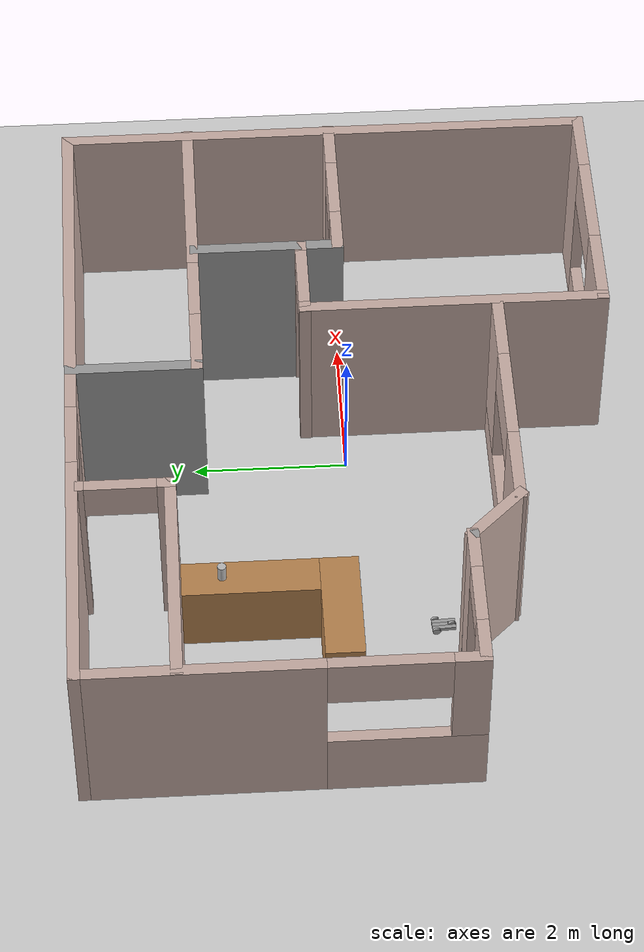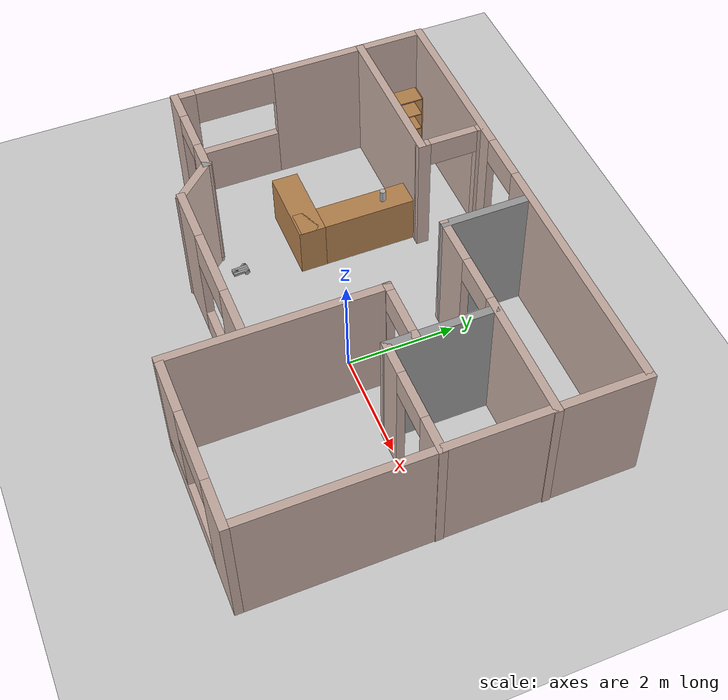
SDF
<sdf version="1.6">
 <world name="default">
  <model name="ground_plane">
   <static>1</static>
   <link name="link">
    <collision name="collision">
     <geometry><plane><normal>0 0 1</normal><size>100 100</size></plane></geometry>
     <surface><friction><ode><mu>100</mu><mu2>50</mu2></ode></friction></surface>
    </collision>
    <visual name="visual">
     <cast_shadows>0</cast_shadows>
     <geometry><plane><normal>0 0 1</normal><size>100 100</size></plane></geometry>
     <material>
      <script><uri>file://media/materials/scripts/gazebo.material</uri><name>Gazebo/Grey</name></script>
     </material>
    </visual>
   </link>
  </model>
  <model name="Building">
   <pose>-0.641845 0.088842 0 0 -0 0</pose>
   <link name="Wall_0">
    <pose>-0.008719 3.42505 0 0 -0 0</pose>
    <visual name="Wall_0_Visual_0">
     <pose>-2.83723 0 1.25 0 -0 0</pose>
     <geometry><box><size>3.32554 0.15 2.5</size></box></geometry>
     <material>
      <script><uri>file://media/materials/scripts/gazebo.material</uri><name>Gazebo/Grey</name></script>
      <ambient>0.760784 0.662745 0.627451 1</ambient>
     </material>
     <meta><layer>0</layer></meta>
    </visual>
    <collision name="Wall_0_Collision_0">
     <geometry><box><size>3.32554 0.15 2.5</size></box></geometry>
     <pose>-2.83723 0 1.25 0 -0 0</pose>
    </collision>
    <visual name="Wall_0_Visual_1">
     <pose>2.11277 0 1.25 0 -0 0</pose>
     <geometry><box><size>4.77445 0.15 2.5</size></box></geometry>
     <material>
      <script><uri>file://media/materials/scripts/gazebo.material</uri><name>Gazebo/Grey</name></script>
      <ambient>0.760784 0.662745 0.627451 1</ambient>
     </material>
     <meta><layer>0</layer></meta>
    </visual>
    <collision name="Wall_0_Collision_1">
     <geometry><box><size>4.77445 0.15 2.5</size></box></geometry>
     <pose>2.11277 0 1.25 0 -0 0</pose>
    </collision>
    <visual name="Wall_0_Visual_2">
     <pose>-0.724455 0 2.25 0 -0 0</pose>
     <geometry><box><size>0.9 0.15 0.5</size></box></geometry>
     <material>
      <script><uri>file://media/materials/scripts/gazebo.material</uri><name>Gazebo/Grey</name></script>
      <ambient>0.760784 0.662745 0.627451 1</ambient>
     </material>
     <meta><layer>0</layer></meta>
    </visual>
    <collision name="Wall_0_Collision_2">
     <geometry><box><size>0.9 0.15 0.5</size></box></geometry>
     <pose>-0.724455 0 2.25 0 -0 0</pose>
    </collision>
   </link>
   <link name="Wall_17">
    <collision name="Wall_17_Collision">
     <geometry><box><size>7 0.15 2.5</size></box></geometry>
     <pose>0 0 1.25 0 -0 0</pose>
    </collision>
    <visual name="Wall_17_Visual">
     <pose>0 0 1.25 0 -0 0</pose>
     <geometry><box><size>7 0.15 2.5</size></box></geometry>
     <material>
      <script><uri>file://media/materials/scripts/gazebo.material</uri><name>Gazebo/Grey</name></script>
      <ambient>0.760784 0.662745 0.627451 1</ambient>
     </material>
     <meta><layer>0</layer></meta>
    </visual>
    <pose>4.41628 5.1e-05 0 0 0 -1.5708</pose>
   </link>
   <link name="Wall_19">
    <pose>2.83077 -3.42495 0 0 -0 3.14159</pose>
    <visual name="Wall_19_Visual_0">
     <pose>-1.20755 0 1.25 0 -0 0</pose>
     <geometry><box><size>0.905905 0.15 2.5</size></box></geometry>
     <material>
      <script><uri>file://media/materials/scripts/gazebo.material</uri><name>Gazebo/Grey</name></script>
      <ambient>0.760784 0.662745 0.627451 1</ambient>
     </material>
     <meta><layer>0</layer></meta>
    </visual>
    <collision name="Wall_19_Collision_0">
     <geometry><box><size>0.905905 0.15 2.5</size></box></geometry>
     <pose>-1.20755 0 1.25 0 -0 0</pose>
    </collision>
    <visual name="Wall_19_Visual_1">
     <pose>0.452953 0 0.25 0 -0 0</pose>
     <geometry><box><size>2.41511 0.15 0.5</size></box></geometry>
     <material>
      <script><uri>file://media/materials/scripts/gazebo.material</uri><name>Gazebo/Grey</name></script>
      <ambient>0.760784 0.662745 0.627451 1</ambient>
     </material>
     <meta><layer>0</layer></meta>
    </visual>
    <collision name="Wall_19_Collision_1">
     <geometry><box><size>2.41511 0.15 0.5</size></box></geometry>
     <pose>0.452953 0 0.25 0 -0 0</pose>
    </collision>
    <visual name="Wall_19_Visual_2">
     <pose>1.10295 0 1.5 0 -0 0</pose>
     <geometry><box><size>1.11511 0.15 2</size></box></geometry>
     <material>
      <script><uri>file://media/materials/scripts/gazebo.material</uri><name>Gazebo/Grey</name></script>
      <ambient>0.760784 0.662745 0.627451 1</ambient>
     </material>
     <meta><layer>0</layer></meta>
    </visual>
    <collision name="Wall_19_Collision_2">
     <geometry><box><size>1.11511 0.15 2</size></box></geometry>
     <pose>1.10295 0 1.5 0 -0 0</pose>
    </collision>
    <visual name="Wall_19_Visual_3">
     <pose>-0.104603 0 2.15 0 -0 0</pose>
     <geometry><box><size>1.3 0.15 0.7</size></box></geometry>
     <material>
      <script><uri>file://media/materials/scripts/gazebo.material</uri><name>Gazebo/Grey</name></script>
      <ambient>0.760784 0.662745 0.627451 1</ambient>
     </material>
     <meta><layer>0</layer></meta>
    </visual>
    <collision name="Wall_19_Collision_3">
     <geometry><box><size>1.3 0.15 0.7</size></box></geometry>
     <pose>-0.104603 0 2.15 0 -0 0</pose>
    </collision>
   </link>
   <link name="Wall_23">
    <pose>-3.50872 -1.42495 0 0 -0 0</pose>
    <visual name="Wall_23_Visual_0">
     <pose>-0.693942 0 1.25 0 -0 0</pose>
     <geometry><box><size>0.612115 0.15 2.5</size></box></geometry>
     <material>
      <script><uri>file://media/materials/scripts/gazebo.material</uri><name>Gazebo/Grey</name></script>
      <ambient>0.760784 0.662745 0.627451 1</ambient>
     </material>
     <meta><layer>0</layer></meta>
    </visual>
    <collision name="Wall_23_Collision_0">
     <geometry><box><size>0.612115 0.15 2.5</size></box></geometry>
     <pose>-0.693942 0 1.25 0 -0 0</pose>
    </collision>
    <visual name="Wall_23_Visual_1">
     <pose>0.306058 0 0.05 0 -0 0</pose>
     <geometry><box><size>1.38789 0.15 0.1</size></box></geometry>
     <material>
      <script><uri>file://media/materials/scripts/gazebo.material</uri><name>Gazebo/Grey</name></script>
      <ambient>0.760784 0.662745 0.627451 1</ambient>
     </material>
     <meta><layer>0</layer></meta>
    </visual>
    <collision name="Wall_23_Collision_1">
     <geometry><box><size>1.38789 0.15 0.1</size></box></geometry>
     <pose>0.306058 0 0.05 0 -0 0</pose>
    </collision>
    <visual name="Wall_23_Visual_2">
     <pose>0.706058 0 1.3 0 -0 0</pose>
     <geometry><box><size>0.587885 0.15 2.4</size></box></geometry>
     <material>
      <script><uri>file://media/materials/scripts/gazebo.material</uri><name>Gazebo/Grey</name></script>
      <ambient>0.760784 0.662745 0.627451 1</ambient>
     </material>
     <meta><layer>0</layer></meta>
    </visual>
    <collision name="Wall_23_Collision_2">
     <geometry><box><size>0.587885 0.15 2.4</size></box></geometry>
     <pose>0.706058 0 1.3 0 -0 0</pose>
    </collision>
    <visual name="Wall_23_Visual_3">
     <pose>0.012115 0 2.3 0 -0 0</pose>
     <geometry><box><size>0.8 0.15 0.4</size></box></geometry>
     <material>
      <script><uri>file://media/materials/scripts/gazebo.material</uri><name>Gazebo/Grey</name></script>
      <ambient>0.760784 0.662745 0.627451 1</ambient>
     </material>
     <meta><layer>0</layer></meta>
    </visual>
    <collision name="Wall_23_Collision_3">
     <geometry><box><size>0.8 0.15 0.4</size></box></geometry>
     <pose>0.012115 0 2.3 0 -0 0</pose>
    </collision>
   </link>
   <link name="Wall_24">
    <collision name="Wall_24_Collision">
     <geometry><box><size>1.02135 0.15 2.5</size></box></geometry>
     <pose>0 0 1.25 0 -0 0</pose>
    </collision>
    <visual name="Wall_24_Visual">
     <pose>0 0 1.25 0 -0 0</pose>
     <geometry><box><size>1.02135 0.15 2.5</size></box></geometry>
     <material>
      <script><uri>file://media/materials/scripts/gazebo.material</uri><name>Gazebo/Grey</name></script>
      <ambient>0.760784 0.662745 0.627451 1</ambient>
     </material>
     <meta><layer>0</layer></meta>
    </visual>
    <pose>-2.2832 -1.74038 0 0 0 -0.809608</pose>
   </link>
   <link name="Wall_27">
    <collision name="Wall_27_Collision">
     <geometry><box><size>1.75 0.15 2.5</size></box></geometry>
     <pose>0 0 1.25 0 -0 0</pose>
    </collision>
    <visual name="Wall_27_Visual">
     <pose>0 0 1.25 0 -0 0</pose>
     <geometry><box><size>1.75 0.15 2.5</size></box></geometry>
     <material>
      <script><uri>file://media/materials/scripts/gazebo.material</uri><name>Gazebo/Grey</name></script>
      <ambient>1 1 1 1</ambient>
     </material>
     <meta><layer>0</layer></meta>
    </visual>
    <pose>0.33372 2.62505 0 0 0 -1.5708</pose>
   </link>
   <link name="Wall_28">
    <pose>2.38372 1.82505 0 0 -0 0</pose>
    <visual name="Wall_28_Visual_0">
     <pose>-1.65584 0 1.25 0 -0 0</pose>
     <geometry><box><size>0.93832 0.15 2.5</size></box></geometry>
     <material>
      <script><uri>file://media/materials/scripts/gazebo.material</uri><name>Gazebo/Grey</name></script>
      <ambient>0.760784 0.662745 0.627451 1</ambient>
     </material>
     <meta><layer>0</layer></meta>
    </visual>
    <collision name="Wall_28_Collision_0">
     <geometry><box><size>0.93832 0.15 2.5</size></box></geometry>
     <pose>-1.65584 0 1.25 0 -0 0</pose>
    </collision>
    <visual name="Wall_28_Visual_1">
     <pose>0.91916 0 1.25 0 -0 0</pose>
     <geometry><box><size>2.41168 0.15 2.5</size></box></geometry>
     <material>
      <script><uri>file://media/materials/scripts/gazebo.material</uri><name>Gazebo/Grey</name></script>
      <ambient>0.760784 0.662745 0.627451 1</ambient>
     </material>
     <meta><layer>0</layer></meta>
    </visual>
    <collision name="Wall_28_Collision_1">
     <geometry><box><size>2.41168 0.15 2.5</size></box></geometry>
     <pose>0.91916 0 1.25 0 -0 0</pose>
    </collision>
    <visual name="Wall_28_Visual_2">
     <pose>-0.73668 0 2.25 0 -0 0</pose>
     <geometry><box><size>0.9 0.15 0.5</size></box></geometry>
     <material>
      <script><uri>file://media/materials/scripts/gazebo.material</uri><name>Gazebo/Grey</name></script>
      <ambient>0.760784 0.662745 0.627451 1</ambient>
     </material>
     <meta><layer>0</layer></meta>
    </visual>
    <collision name="Wall_28_Collision_2">
     <geometry><box><size>0.9 0.15 0.5</size></box></geometry>
     <pose>-0.73668 0 2.25 0 -0 0</pose>
    </collision>
   </link>
   <link name="Wall_30">
    <collision name="Wall_30_Collision">
     <geometry><box><size>2 0.15 2.5</size></box></geometry>
     <pose>0 0 1.25 0 -0 0</pose>
    </collision>
    <visual name="Wall_30_Visual">
     <pose>0 0 1.25 0 -0 0</pose>
     <geometry><box><size>2 0.15 2.5</size></box></geometry>
     <material>
      <script><uri>file://media/materials/scripts/gazebo.material</uri><name>Gazebo/Grey</name></script>
      <ambient>1 1 1 1</ambient>
     </material>
     <meta><layer>0</layer></meta>
    </visual>
    <pose>2.32759 0.85598 0 0 0 -1.5708</pose>
   </link>
   <link name="Wall_32">
    <pose>3.37759 -0.06902 0 0 -0 0</pose>
    <visual name="Wall_32_Visual_0">
     <pose>-0.796543 0 1.25 0 -0 0</pose>
     <geometry><box><size>0.656914 0.15 2.5</size></box></geometry>
     <material>
      <script><uri>file://media/materials/scripts/gazebo.material</uri><name>Gazebo/Grey</name></script>
      <ambient>0.760784 0.662745 0.627451 1</ambient>
     </material>
     <meta><layer>0</layer></meta>
    </visual>
    <collision name="Wall_32_Collision_0">
     <geometry><box><size>0.656914 0.15 2.5</size></box></geometry>
     <pose>-0.796543 0 1.25 0 -0 0</pose>
    </collision>
    <visual name="Wall_32_Visual_1">
     <pose>0.778457 0 1.25 0 -0 0</pose>
     <geometry><box><size>0.693086 0.15 2.5</size></box></geometry>
     <material>
      <script><uri>file://media/materials/scripts/gazebo.material</uri><name>Gazebo/Grey</name></script>
      <ambient>0.760784 0.662745 0.627451 1</ambient>
     </material>
     <meta><layer>0</layer></meta>
    </visual>
    <collision name="Wall_32_Collision_1">
     <geometry><box><size>0.693086 0.15 2.5</size></box></geometry>
     <pose>0.778457 0 1.25 0 -0 0</pose>
    </collision>
    <visual name="Wall_32_Visual_2">
     <pose>-0.018086 0 2.25 0 -0 0</pose>
     <geometry><box><size>0.9 0.15 0.5</size></box></geometry>
     <material>
      <script><uri>file://media/materials/scripts/gazebo.material</uri><name>Gazebo/Grey</name></script>
      <ambient>0.760784 0.662745 0.627451 1</ambient>
     </material>
     <meta><layer>0</layer></meta>
    </visual>
    <collision name="Wall_32_Collision_2">
     <geometry><box><size>0.9 0.15 0.5</size></box></geometry>
     <pose>-0.018086 0 2.25 0 -0 0</pose>
    </collision>
   </link>
   <link name="Wall_34">
    <collision name="Wall_34_Collision">
     <geometry><box><size>3 0.15 2.5</size></box></geometry>
     <pose>0 0 1.25 0 -0 0</pose>
    </collision>
    <visual name="Wall_34_Visual">
     <pose>0 0 1.25 0 -0 0</pose>
     <geometry><box><size>3 0.15 2.5</size></box></geometry>
     <material>
      <script><uri>file://media/materials/scripts/gazebo.material</uri><name>Gazebo/Grey</name></script>
      <ambient>0.760784 0.662745 0.627451 1</ambient>
     </material>
     <meta><layer>0</layer></meta>
    </visual>
    <pose>-2.99858 2.21823 0 0 -0 0</pose>
   </link>
   <link name="Wall_35">
    <pose>-1.57358 2.76823 0 0 -0 1.5708</pose>
    <visual name="Wall_35_Visual_0">
     <pose>-0.506424 0 1.25 0 -0 0</pose>
     <geometry><box><size>0.237152 0.15 2.5</size></box></geometry>
     <material>
      <script><uri>file://media/materials/scripts/gazebo.material</uri><name>Gazebo/Grey</name></script>
      <ambient>0.760784 0.662745 0.627451 1</ambient>
     </material>
     <meta><layer>0</layer></meta>
    </visual>
    <collision name="Wall_35_Collision_0">
     <geometry><box><size>0.237152 0.15 2.5</size></box></geometry>
     <pose>-0.506424 0 1.25 0 -0 0</pose>
    </collision>
    <visual name="Wall_35_Visual_1">
     <pose>0.568576 0 1.25 0 -0 0</pose>
     <geometry><box><size>0.112848 0.15 2.5</size></box></geometry>
     <material>
      <script><uri>file://media/materials/scripts/gazebo.material</uri><name>Gazebo/Grey</name></script>
      <ambient>0.760784 0.662745 0.627451 1</ambient>
     </material>
     <meta><layer>0</layer></meta>
    </visual>
    <collision name="Wall_35_Collision_1">
     <geometry><box><size>0.112848 0.15 2.5</size></box></geometry>
     <pose>0.568576 0 1.25 0 -0 0</pose>
    </collision>
    <visual name="Wall_35_Visual_2">
     <pose>0.062152 0 2.25 0 -0 0</pose>
     <geometry><box><size>0.9 0.15 0.5</size></box></geometry>
     <material>
      <script><uri>file://media/materials/scripts/gazebo.material</uri><name>Gazebo/Grey</name></script>
      <ambient>0.760784 0.662745 0.627451 1</ambient>
     </material>
     <meta><layer>0</layer></meta>
    </visual>
    <collision name="Wall_35_Collision_2">
     <geometry><box><size>0.9 0.15 0.5</size></box></geometry>
     <pose>0.062152 0 2.25 0 -0 0</pose>
    </collision>
   </link>
   <link name="Wall_37">
    <collision name="Wall_37_Collision">
     <geometry><box><size>3.99026 0.15 2.5</size></box></geometry>
     <pose>0 0 1.25 0 -0 0</pose>
    </collision>
    <visual name="Wall_37_Visual">
     <pose>0 0 1.25 0 -0 0</pose>
     <geometry><box><size>3.99026 0.15 2.5</size></box></geometry>
     <material>
      <script><uri>file://media/materials/scripts/gazebo.material</uri><name>Gazebo/Grey</name></script>
      <ambient>0.760784 0.662745 0.627451 1</ambient>
     </material>
     <meta><layer>0</layer></meta>
    </visual>
    <pose>1.23533 -1.50492 0 0 -0 1.57079</pose>
   </link>
   <link name="Wall_38">
    <pose>1.77039 0.415108 0 0 -0 0</pose>
    <visual name="Wall_38_Visual_0">
     <pose>-0.529272 0 1.25 0 -0 0</pose>
     <geometry><box><size>0.181455 0.15 2.5</size></box></geometry>
     <material>
      <script><uri>file://media/materials/scripts/gazebo.material</uri><name>Gazebo/Grey</name></script>
      <ambient>0.760784 0.662745 0.627451 1</ambient>
     </material>
     <meta><layer>0</layer></meta>
    </visual>
    <collision name="Wall_38_Collision_0">
     <geometry><box><size>0.181455 0.15 2.5</size></box></geometry>
     <pose>-0.529272 0 1.25 0 -0 0</pose>
    </collision>
    <visual name="Wall_38_Visual_1">
     <pose>0.540728 0 1.25 0 -0 0</pose>
     <geometry><box><size>0.158545 0.15 2.5</size></box></geometry>
     <material>
      <script><uri>file://media/materials/scripts/gazebo.material</uri><name>Gazebo/Grey</name></script>
      <ambient>0.760784 0.662745 0.627451 1</ambient>
     </material>
     <meta><layer>0</layer></meta>
    </visual>
    <collision name="Wall_38_Collision_1">
     <geometry><box><size>0.158545 0.15 2.5</size></box></geometry>
     <pose>0.540728 0 1.25 0 -0 0</pose>
    </collision>
    <visual name="Wall_38_Visual_2">
     <pose>0.011455 0 2.25 0 -0 0</pose>
     <geometry><box><size>0.9 0.15 0.5</size></box></geometry>
     <material>
      <script><uri>file://media/materials/scripts/gazebo.material</uri><name>Gazebo/Grey</name></script>
      <ambient>0.760784 0.662745 0.627451 1</ambient>
     </material>
     <meta><layer>0</layer></meta>
    </visual>
    <collision name="Wall_38_Collision_2">
     <geometry><box><size>0.9 0.15 0.5</size></box></geometry>
     <pose>0.011455 0 2.25 0 -0 0</pose>
    </collision>
   </link>
   <link name="Wall_4">
    <pose>-4.43372 1.00005 0 0 0 -1.5708</pose>
    <visual name="Wall_4_Visual_0">
     <pose>-0.974806 0 1.25 0 -0 0</pose>
     <geometry><box><size>3.05039 0.15 2.5</size></box></geometry>
     <material>
      <script><uri>file://media/materials/scripts/gazebo.material</uri><name>Gazebo/Grey</name></script>
      <ambient>0.760784 0.662745 0.627451 1</ambient>
     </material>
     <meta><layer>0</layer></meta>
    </visual>
    <collision name="Wall_4_Collision_0">
     <geometry><box><size>3.05039 0.15 2.5</size></box></geometry>
     <pose>-0.974806 0 1.25 0 -0 0</pose>
    </collision>
    <visual name="Wall_4_Visual_1">
     <pose>1.52519 0 0.5 0 -0 0</pose>
     <geometry><box><size>1.94961 0.15 1</size></box></geometry>
     <material>
      <script><uri>file://media/materials/scripts/gazebo.material</uri><name>Gazebo/Grey</name></script>
      <ambient>0.760784 0.662745 0.627451 1</ambient>
     </material>
     <meta><layer>0</layer></meta>
    </visual>
    <collision name="Wall_4_Collision_1">
     <geometry><box><size>1.94961 0.15 1</size></box></geometry>
     <pose>1.52519 0 0.5 0 -0 0</pose>
    </collision>
    <visual name="Wall_4_Visual_2">
     <pose>2.27519 0 1.75 0 -0 0</pose>
     <geometry><box><size>0.449611 0.15 1.5</size></box></geometry>
     <material>
      <script><uri>file://media/materials/scripts/gazebo.material</uri><name>Gazebo/Grey</name></script>
      <ambient>0.760784 0.662745 0.627451 1</ambient>
     </material>
     <meta><layer>0</layer></meta>
    </visual>
    <collision name="Wall_4_Collision_2">
     <geometry><box><size>0.449611 0.15 1.5</size></box></geometry>
     <pose>2.27519 0 1.75 0 -0 0</pose>
    </collision>
    <visual name="Wall_4_Visual_3">
     <pose>1.30039 0 2.15 0 -0 0</pose>
     <geometry><box><size>1.5 0.15 0.7</size></box></geometry>
     <material>
      <script><uri>file://media/materials/scripts/gazebo.material</uri><name>Gazebo/Grey</name></script>
      <ambient>0.760784 0.662745 0.627451 1</ambient>
     </material>
     <meta><layer>0</layer></meta>
    </visual>
    <collision name="Wall_4_Collision_3">
     <geometry><box><size>1.5 0.15 0.7</size></box></geometry>
     <pose>1.30039 0 2.15 0 -0 0</pose>
    </collision>
   </link>
   <link name="Wall_40">
    <pose>-0.432678 -2.05582 0 0 -0 0</pose>
    <visual name="Wall_40_Visual_0">
     <pose>-1.09985 0 1.25 0 -0 0</pose>
     <geometry><box><size>1.0503 0.15 2.5</size></box></geometry>
     <material>
      <script><uri>file://media/materials/scripts/gazebo.material</uri><name>Gazebo/Grey</name></script>
      <ambient>0.760784 0.662745 0.627451 1</ambient>
     </material>
     <meta><layer>0</layer></meta>
    </visual>
    <collision name="Wall_40_Collision_0">
     <geometry><box><size>1.0503 0.15 2.5</size></box></geometry>
     <pose>-1.09985 0 1.25 0 -0 0</pose>
    </collision>
    <visual name="Wall_40_Visual_1">
     <pose>0.52515 0 0.25 0 -0 0</pose>
     <geometry><box><size>2.1997 0.15 0.5</size></box></geometry>
     <material>
      <script><uri>file://media/materials/scripts/gazebo.material</uri><name>Gazebo/Grey</name></script>
      <ambient>0.760784 0.662745 0.627451 1</ambient>
     </material>
     <meta><layer>0</layer></meta>
    </visual>
    <collision name="Wall_40_Collision_1">
     <geometry><box><size>2.1997 0.15 0.5</size></box></geometry>
     <pose>0.52515 0 0.25 0 -0 0</pose>
    </collision>
    <visual name="Wall_40_Visual_2">
     <pose>1.17515 0 1.5 0 -0 0</pose>
     <geometry><box><size>0.8997 0.15 2</size></box></geometry>
     <material>
      <script><uri>file://media/materials/scripts/gazebo.material</uri><name>Gazebo/Grey</name></script>
      <ambient>0.760784 0.662745 0.627451 1</ambient>
     </material>
     <meta><layer>0</layer></meta>
    </visual>
    <collision name="Wall_40_Collision_2">
     <geometry><box><size>0.8997 0.15 2</size></box></geometry>
     <pose>1.17515 0 1.5 0 -0 0</pose>
    </collision>
    <visual name="Wall_40_Visual_3">
     <pose>0.0753 0 2.15 0 -0 0</pose>
     <geometry><box><size>1.3 0.15 0.7</size></box></geometry>
     <material>
      <script><uri>file://media/materials/scripts/gazebo.material</uri><name>Gazebo/Grey</name></script>
      <ambient>0.760784 0.662745 0.627451 1</ambient>
     </material>
     <meta><layer>0</layer></meta>
    </visual>
    <collision name="Wall_40_Collision_3">
     <geometry><box><size>1.3 0.15 0.7</size></box></geometry>
     <pose>0.0753 0 2.15 0 -0 0</pose>
    </collision>
   </link>
   <link name="Wall_42">
    <collision name="Wall_42_Collision">
     <geometry><box><size>2.25 0.5 1</size></box></geometry>
     <pose>0 0 0.5 0 -0 0</pose>
    </collision>
    <visual name="Wall_42_Visual">
     <pose>0 0 0.5 0 -0 0</pose>
     <geometry><box><size>2.25 0.5 1</size></box></geometry>
     <material>
      <script><uri>file://media/materials/scripts/gazebo.material</uri><name>Gazebo/Wood</name></script>
      <ambient>1 1 1 1</ambient>
     </material>
     <meta><layer>0</layer></meta>
    </visual>
    <pose>-1.93472 1.06205 0 0 0 -1.5708</pose>
   </link>
   <link name="Wall_44">
    <collision name="Wall_44_Collision">
     <geometry><box><size>1.5 0.5 1</size></box></geometry>
     <pose>0 0 0.5 0 -0 0</pose>
    </collision>
    <visual name="Wall_44_Visual">
     <pose>0 0 0.5 0 -0 0</pose>
     <geometry><box><size>1.5 0.5 1</size></box></geometry>
     <material>
      <script><uri>file://media/materials/scripts/gazebo.material</uri><name>Gazebo/Wood</name></script>
      <ambient>1 1 1 1</ambient>
     </material>
     <meta><layer>0</layer></meta>
    </visual>
    <pose>-2.43272 0.148052 0 0 -0 3.14159</pose>
   </link>
   <link name="Wall_6">
    <collision name="Wall_6_Collision">
     <geometry><box><size>0.15 0.15 2.5</size></box></geometry>
     <pose>0 0 1.25 0 -0 0</pose>
    </collision>
    <visual name="Wall_6_Visual">
     <pose>0 0 1.25 0 -0 0</pose>
     <geometry><box><size>0.15 0.15 2.5</size></box></geometry>
     <material>
      <script><uri>file://media/materials/scripts/gazebo.material</uri><name>Gazebo/Grey</name></script>
      <ambient>1 1 1 1</ambient>
     </material>
     <meta><layer>0</layer></meta>
    </visual>
    <pose>-2.58372 -1.42495 0 0 -0 0</pose>
   </link>
   <static>1</static>
  </model>
  <model name="beer">
   <link name="link">
    <pose>0 0 0.115 0 -0 0</pose>
    <inertial>
     <mass>0.39</mass>
     <inertia><ixx>0.00058</ixx><ixy>0</ixy><ixz>0</ixz><iyy>0.00058</iyy><iyz>0</iyz><izz>0.00019</izz></inertia>
    </inertial>
    <collision name="collision">
     <geometry><cylinder><radius>0.055</radius><length>0.23</length></cylinder></geometry>
    </collision>
    <visual name="visual">
     <geometry><cylinder><radius>0.055</radius><length>0.23</length></cylinder></geometry>
     <material>
      <script>
       <uri>model://beer/materials/scripts</uri>
       <uri>model://beer/materials/textures</uri>
       <name>Beer/Diffuse</name>
      </script>
     </material>
    </visual>
   </link>
   <pose>-2.56948 1.71503 1.00001 2.5e-05 9.5e-05 -0.000763</pose>
  </model>
  <model name="tricycle">
   <link name="link_0_clone">
    <pose>0.05011 -0.0238 0 0 -0 0</pose>
    <inertial>
     <mass>1</mass>
     <inertia>
      <ixx>0.166667</ixx>
      <ixy>0</ixy>
      <ixz>0</ixz>
      <iyy>0.166667</iyy>
      <iyz>0</iyz>
      <izz>0.166667</izz>
     </inertia>
    </inertial>
    <visual name="visual">
     <geometry><box><size>0.05 0.3 0.05</size></box></geometry>
     <material>
      <lighting>1</lighting>
      <script><uri>file://media/materials/scripts/gazebo.material</uri><name>Gazebo/Grey</name></script>
      <shader type="pixel"><normal_map>__default__</normal_map></shader>
      <ambient>0.3 0.3 0.3 1</ambient>
      <diffuse>0.7 0.7 0.7 1</diffuse>
      <specular>0.01 0.01 0.01 1</specular>
      <emissive>0 0 0 1</emissive>
     </material>
    </visual>
    <collision name="collision">
     <geometry><box><size>0.05 0.3 0.05</size></box></geometry>
     <surface>
      <friction>
       <ode><mu>1</mu><mu2>1</mu2><fdir1>0 0 0</fdir1><slip1>0</slip1><slip2>0</slip2></ode>
       <torsional>
        <coefficient>1</coefficient>
        <patch_radius>0</patch_radius>
        <surface_radius>0</surface_radius>
        <use_patch_radius>1</use_patch_radius>
        <ode><slip>0</slip></ode>
       </torsional>
      </friction>
      <bounce><restitution_coefficient>0</restitution_coefficient><threshold>1e+06</threshold></bounce>
      <contact>
       <collide_without_contact>0</collide_without_contact>
       <collide_without_contact_bitmask>1</collide_without_contact_bitmask>
       <collide_bitmask>1</collide_bitmask>
       <ode>
        <soft_cfm>0</soft_cfm>
        <soft_erp>0.2</soft_erp>
        <kp>1e+13</kp>
        <kd>1</kd>
        <max_vel>0.01</max_vel>
        <min_depth>0</min_depth>
       </ode>
       <bullet>
        <split_impulse>1</split_impulse>
        <split_impulse_penetration_threshold>-0.01</split_impulse_penetration_threshold>
        <soft_cfm>0</soft_cfm>
        <soft_erp>0.2</soft_erp>
        <kp>1e+13</kp>
        <kd>1</kd>
       </bullet>
      </contact>
     </surface>
    </collision>
   </link>
   <link name="link_0_clone_0">
    <pose>0.00011 0.0262 0 0 -0 0</pose>
    <inertial>
     <mass>1</mass>
     <inertia>
      <ixx>0.166667</ixx>
      <ixy>0</ixy>
      <ixz>0</ixz>
      <iyy>0.166667</iyy>
      <iyz>0</iyz>
      <izz>0.166667</izz>
     </inertia>
    </inertial>
    <visual name="visual">
     <geometry><box><size>0.05 0.2 0.05</size></box></geometry>
     <material>
      <lighting>1</lighting>
      <script><uri>file://media/materials/scripts/gazebo.material</uri><name>Gazebo/Grey</name></script>
      <shader type="pixel"><normal_map>__default__</normal_map></shader>
      <ambient>0.3 0.3 0.3 1</ambient>
      <diffuse>0.7 0.7 0.7 1</diffuse>
      <specular>0.01 0.01 0.01 1</specular>
      <emissive>0 0 0 1</emissive>
     </material>
    </visual>
    <collision name="collision">
     <geometry><box><size>0.05 0.2 0.05</size></box></geometry>
     <surface>
      <friction>
       <ode><mu>1</mu><mu2>1</mu2><fdir1>0 0 0</fdir1><slip1>0</slip1><slip2>0</slip2></ode>
       <torsional>
        <coefficient>1</coefficient>
        <patch_radius>0</patch_radius>
        <surface_radius>0</surface_radius>
        <use_patch_radius>1</use_patch_radius>
        <ode><slip>0</slip></ode>
       </torsional>
      </friction>
      <bounce><restitution_coefficient>0</restitution_coefficient><threshold>1e+06</threshold></bounce>
      <contact>
       <collide_without_contact>0</collide_without_contact>
       <collide_without_contact_bitmask>1</collide_without_contact_bitmask>
       <collide_bitmask>1</collide_bitmask>
       <ode>
        <soft_cfm>0</soft_cfm>
        <soft_erp>0.2</soft_erp>
        <kp>1e+13</kp>
        <kd>1</kd>
        <max_vel>0.01</max_vel>
        <min_depth>0</min_depth>
       </ode>
       <bullet>
        <split_impulse>1</split_impulse>
        <split_impulse_penetration_threshold>-0.01</split_impulse_penetration_threshold>
        <soft_cfm>0</soft_cfm>
        <soft_erp>0.2</soft_erp>
        <kp>1e+13</kp>
        <kd>1</kd>
       </bullet>
      </contact>
     </surface>
    </collision>
   </link>
   <link name="link_0_clone_clone">
    <pose>-0.04989 -0.0238 0 0 -0 0</pose>
    <inertial>
     <mass>1</mass>
     <inertia>
      <ixx>0.166667</ixx>
      <ixy>0</ixy>
      <ixz>0</ixz>
      <iyy>0.166667</iyy>
      <iyz>0</iyz>
      <izz>0.166667</izz>
     </inertia>
    </inertial>
    <visual name="visual">
     <geometry><box><size>0.05 0.3 0.05</size></box></geometry>
     <material>
      <lighting>1</lighting>
      <script><uri>file://media/materials/scripts/gazebo.material</uri><name>Gazebo/Grey</name></script>
      <shader type="pixel"><normal_map>__default__</normal_map></shader>
      <ambient>0.3 0.3 0.3 1</ambient>
      <diffuse>0.7 0.7 0.7 1</diffuse>
      <specular>0.01 0.01 0.01 1</specular>
      <emissive>0 0 0 1</emissive>
     </material>
    </visual>
    <collision name="collision">
     <geometry><box><size>0.05 0.3 0.05</size></box></geometry>
     <surface>
      <friction>
       <ode><mu>1</mu><mu2>1</mu2><fdir1>0 0 0</fdir1><slip1>0</slip1><slip2>0</slip2></ode>
       <torsional>
        <coefficient>1</coefficient>
        <patch_radius>0</patch_radius>
        <surface_radius>0</surface_radius>
        <use_patch_radius>1</use_patch_radius>
        <ode><slip>0</slip></ode>
       </torsional>
      </friction>
      <bounce><restitution_coefficient>0</restitution_coefficient><threshold>1e+06</threshold></bounce>
      <contact>
       <collide_without_contact>0</collide_without_contact>
       <collide_without_contact_bitmask>1</collide_without_contact_bitmask>
       <collide_bitmask>1</collide_bitmask>
       <ode>
        <soft_cfm>0</soft_cfm>
        <soft_erp>0.2</soft_erp>
        <kp>1e+13</kp>
        <kd>1</kd>
        <max_vel>0.01</max_vel>
        <min_depth>0</min_depth>
       </ode>
       <bullet>
        <split_impulse>1</split_impulse>
        <split_impulse_penetration_threshold>-0.01</split_impulse_penetration_threshold>
        <soft_cfm>0</soft_cfm>
        <soft_erp>0.2</soft_erp>
        <kp>1e+13</kp>
        <kd>1</kd>
       </bullet>
      </contact>
     </surface>
    </collision>
   </link>
   <link name="link_1">
    <pose>-0.000551 -0.131 0 0 -0 0</pose>
    <inertial>
     <mass>1</mass>
     <inertia><ixx>0.145833</ixx><ixy>0</ixy><ixz>0</ixz><iyy>0.145833</iyy><iyz>0</iyz><izz>0.125</izz></inertia>
    </inertial>
    <visual name="visual">
     <pose>0 0 0 0 1.5707 0</pose>
     <geometry><cylinder><radius>0.05</radius><length>0.03</length></cylinder></geometry>
     <material>
      <lighting>1</lighting>
      <script><uri>file://media/materials/scripts/gazebo.material</uri><name>Gazebo/Grey</name></script>
      <shader type="pixel"><normal_map>__default__</normal_map></shader>
      <ambient>0.3 0.3 0.3 1</ambient>
      <diffuse>0.7 0.7 0.7 1</diffuse>
      <specular>0.01 0.01 0.01 1</specular>
      <emissive>0 0 0 1</emissive>
     </material>
    </visual>
    <collision name="collision">
     <pose>0 0 0 0 1.5707 0</pose>
     <geometry><cylinder><radius>0.05</radius><length>0.03</length></cylinder></geometry>
     <surface>
      <friction>
       <ode><mu>1</mu><mu2>1</mu2><fdir1>0 0 0</fdir1><slip1>0</slip1><slip2>0</slip2></ode>
       <torsional>
        <coefficient>1</coefficient>
        <patch_radius>0</patch_radius>
        <surface_radius>0</surface_radius>
        <use_patch_radius>1</use_patch_radius>
        <ode><slip>0</slip></ode>
       </torsional>
      </friction>
      <bounce><restitution_coefficient>0</restitution_coefficient><threshold>1e+06</threshold></bounce>
      <contact>
       <collide_without_contact>0</collide_without_contact>
       <collide_without_contact_bitmask>1</collide_without_contact_bitmask>
       <collide_bitmask>1</collide_bitmask>
       <ode>
        <soft_cfm>0</soft_cfm>
        <soft_erp>0.2</soft_erp>
        <kp>1e+13</kp>
        <kd>1</kd>
        <max_vel>0.01</max_vel>
        <min_depth>0</min_depth>
       </ode>
       <bullet>
        <split_impulse>1</split_impulse>
        <split_impulse_penetration_threshold>-0.01</split_impulse_penetration_threshold>
        <soft_cfm>0</soft_cfm>
        <soft_erp>0.2</soft_erp>
        <kp>1e+13</kp>
        <kd>1</kd>
       </bullet>
      </contact>
     </surface>
    </collision>
   </link>
   <link name="link_1_clone">
    <pose>0.090114 0.0762 0 0 -0 0</pose>
    <inertial>
     <mass>1</mass>
     <inertia><ixx>0.145833</ixx><ixy>0</ixy><ixz>0</ixz><iyy>0.145833</iyy><iyz>0</iyz><izz>0.125</izz></inertia>
    </inertial>
    <visual name="visual">
     <pose>0 0 0 0 1.5707 0</pose>
     <geometry><cylinder><radius>0.05</radius><length>0.03</length></cylinder></geometry>
     <material>
      <lighting>1</lighting>
      <script><uri>file://media/materials/scripts/gazebo.material</uri><name>Gazebo/Grey</name></script>
      <shader type="pixel"><normal_map>__default__</normal_map></shader>
      <ambient>0.3 0.3 0.3 1</ambient>
      <diffuse>0.7 0.7 0.7 1</diffuse>
      <specular>0.01 0.01 0.01 1</specular>
      <emissive>0 0 0 1</emissive>
     </material>
    </visual>
    <collision name="collision">
     <pose>0 0 0 0 1.5707 0</pose>
     <geometry><cylinder><radius>0.05</radius><length>0.03</length></cylinder></geometry>
     <surface>
      <friction>
       <ode><mu>1</mu><mu2>1</mu2><fdir1>0 0 0</fdir1><slip1>0</slip1><slip2>0</slip2></ode>
       <torsional>
        <coefficient>1</coefficient>
        <patch_radius>0</patch_radius>
        <surface_radius>0</surface_radius>
        <use_patch_radius>1</use_patch_radius>
        <ode><slip>0</slip></ode>
       </torsional>
      </friction>
      <bounce><restitution_coefficient>0</restitution_coefficient><threshold>1e+06</threshold></bounce>
      <contact>
       <collide_without_contact>0</collide_without_contact>
       <collide_without_contact_bitmask>1</collide_without_contact_bitmask>
       <collide_bitmask>1</collide_bitmask>
       <ode>
        <soft_cfm>0</soft_cfm>
        <soft_erp>0.2</soft_erp>
        <kp>1e+13</kp>
        <kd>1</kd>
        <max_vel>0.01</max_vel>
        <min_depth>0</min_depth>
       </ode>
       <bullet>
        <split_impulse>1</split_impulse>
        <split_impulse_penetration_threshold>-0.01</split_impulse_penetration_threshold>
        <soft_cfm>0</soft_cfm>
        <soft_erp>0.2</soft_erp>
        <kp>1e+13</kp>
        <kd>1</kd>
       </bullet>
      </contact>
     </surface>
    </collision>
   </link>
   <link name="link_1_clone_0">
    <pose>-0.089895 0.0762 0 0 -0 0</pose>
    <inertial>
     <mass>1</mass>
     <inertia><ixx>0.145833</ixx><ixy>0</ixy><ixz>0</ixz><iyy>0.145833</iyy><iyz>0</iyz><izz>0.125</izz></inertia>
    </inertial>
    <visual name="visual">
     <pose>0 0 0 0 1.5707 0</pose>
     <geometry><cylinder><radius>0.05</radius><length>0.03</length></cylinder></geometry>
     <material>
      <lighting>1</lighting>
      <script><uri>file://media/materials/scripts/gazebo.material</uri><name>Gazebo/Grey</name></script>
      <shader type="pixel"><normal_map>__default__</normal_map></shader>
      <ambient>0.3 0.3 0.3 1</ambient>
      <diffuse>0.7 0.7 0.7 1</diffuse>
      <specular>0.01 0.01 0.01 1</specular>
      <emissive>0 0 0 1</emissive>
     </material>
    </visual>
    <collision name="collision">
     <pose>0 0 0 0 1.5707 0</pose>
     <geometry><cylinder><radius>0.05</radius><length>0.03</length></cylinder></geometry>
     <surface>
      <friction>
       <ode><mu>1</mu><mu2>1</mu2><fdir1>0 0 0</fdir1><slip1>0</slip1><slip2>0</slip2></ode>
       <torsional>
        <coefficient>1</coefficient>
        <patch_radius>0</patch_radius>
        <surface_radius>0</surface_radius>
        <use_patch_radius>1</use_patch_radius>
        <ode><slip>0</slip></ode>
       </torsional>
      </friction>
      <bounce><restitution_coefficient>0</restitution_coefficient><threshold>1e+06</threshold></bounce>
      <contact>
       <collide_without_contact>0</collide_without_contact>
       <collide_without_contact_bitmask>1</collide_without_contact_bitmask>
       <collide_bitmask>1</collide_bitmask>
       <ode>
        <soft_cfm>0</soft_cfm>
        <soft_erp>0.2</soft_erp>
        <kp>1e+13</kp>
        <kd>1</kd>
        <max_vel>0.01</max_vel>
        <min_depth>0</min_depth>
       </ode>
       <bullet>
        <split_impulse>1</split_impulse>
        <split_impulse_penetration_threshold>-0.01</split_impulse_penetration_threshold>
        <soft_cfm>0</soft_cfm>
        <soft_erp>0.2</soft_erp>
        <kp>1e+13</kp>
        <kd>1</kd>
       </bullet>
      </contact>
     </surface>
    </collision>
   </link>
   <joint name="link_0_clone_0_JOINT_0" type="fixed">
    <parent>link_0_clone_0</parent>
    <child>link_0_clone</child>
    <physics>
     <ode><limit><cfm>0</cfm><erp>0.2</erp></limit><suspension><cfm>0</cfm><erp>0.2</erp></suspension></ode>
    </physics>
   </joint>
   <joint name="link_0_clone_0_JOINT_2" type="fixed">
    <parent>link_0_clone_0</parent>
    <child>link_0_clone_clone</child>
    <physics>
     <ode><limit><cfm>0</cfm><erp>0.2</erp></limit><suspension><cfm>0</cfm><erp>0.2</erp></suspension></ode>
    </physics>
   </joint>
   <joint name="link_0_clone_JOINT_3" type="revolute">
    <parent>link_0_clone</parent>
    <child>link_1</child>
    <axis>
     <xyz>1 0 0</xyz>
     <use_parent_model_frame>0</use_parent_model_frame>
     <limit>
      <lower>-1.79769e+308</lower>
      <upper>1.79769e+308</upper>
      <effort>-1</effort>
      <velocity>-1</velocity>
     </limit>
     <dynamics>
      <spring_reference>0</spring_reference>
      <spring_stiffness>0</spring_stiffness>
      <damping>0</damping>
     </dynamics>
    </axis>
    <physics>
     <ode><limit><cfm>0</cfm><erp>0.2</erp></limit><suspension><cfm>0</cfm><erp>0.2</erp></suspension></ode>
    </physics>
   </joint>
   <joint name="link_0_clone_JOINT_4" type="revolute">
    <parent>link_0_clone</parent>
    <child>link_1_clone</child>
    <axis>
     <xyz>1 0 0</xyz>
     <use_parent_model_frame>0</use_parent_model_frame>
     <limit>
      <lower>-1.79769e+308</lower>
      <upper>1.79769e+308</upper>
      <effort>-1</effort>
      <velocity>-1</velocity>
     </limit>
     <dynamics>
      <spring_reference>0</spring_reference>
      <spring_stiffness>0</spring_stiffness>
      <damping>0</damping>
     </dynamics>
    </axis>
    <physics>
     <ode><limit><cfm>0</cfm><erp>0.2</erp></limit><suspension><cfm>0</cfm><erp>0.2</erp></suspension></ode>
    </physics>
   </joint>
   <joint name="link_0_clone_clone_JOINT_5" type="revolute">
    <parent>link_0_clone_clone</parent>
    <child>link_1_clone_0</child>
    <axis>
     <xyz>1 0 0</xyz>
     <use_parent_model_frame>0</use_parent_model_frame>
     <limit>
      <lower>-1.79769e+308</lower>
      <upper>1.79769e+308</upper>
      <effort>-1</effort>
      <velocity>-1</velocity>
     </limit>
     <dynamics>
      <spring_reference>0</spring_reference>
      <spring_stiffness>0</spring_stiffness>
      <damping>0</damping>
     </dynamics>
    </axis>
    <physics>
     <ode><limit><cfm>0</cfm><erp>0.2</erp></limit><suspension><cfm>0</cfm><erp>0.2</erp></suspension></ode>
    </physics>
   </joint>
   <static>0</static>
   <pose>-2.75308 -1.05434 0.050001 4e-06 1.6e-05 0.062113</pose>
  </model>
  <model name="bookshelf_0">
   <static>1</static>
   <link name="link">
    <inertial><mass>1</mass></inertial>
    <collision name="back">
     <pose>0 0.005 0.6 0 -0 0</pose>
     <geometry><box><size>0.9 0.01 1.2</size></box></geometry>
    </collision>
    <visual name="visual1">
     <pose>0 0.005 0.6 0 -0 0</pose>
     <geometry><box><size>0.9 0.01 1.2</size></box></geometry>
     <material>
      <script><uri>file://media/materials/scripts/gazebo.material</uri><name>Gazebo/Wood</name></script>
     </material>
    </visual>
    <collision name="left_side">
     <pose>0.45 -0.195 0.6 0 -0 0</pose>
     <geometry><box><size>0.02 0.4 1.2</size></box></geometry>
    </collision>
    <visual name="visual2">
     <pose>0.45 -0.195 0.6 0 -0 0</pose>
     <geometry><box><size>0.02 0.4 1.2</size></box></geometry>
     <material>
      <script><uri>file://media/materials/scripts/gazebo.material</uri><name>Gazebo/Wood</name></script>
     </material>
    </visual>
    <collision name="right_side">
     <pose>-0.45 -0.195 0.6 0 -0 0</pose>
     <geometry><box><size>0.02 0.4 1.2</size></box></geometry>
    </collision>
    <visual name="visual3">
     <pose>-0.45 -0.195 0.6 0 -0 0</pose>
     <geometry><box><size>0.02 0.4 1.2</size></box></geometry>
     <material>
      <script><uri>file://media/materials/scripts/gazebo.material</uri><name>Gazebo/Wood</name></script>
     </material>
    </visual>
    <collision name="bottom">
     <pose>0 -0.195 0.03 0 -0 0</pose>
     <geometry><box><size>0.88 0.4 0.06</size></box></geometry>
    </collision>
    <visual name="visual4">
     <pose>0 -0.195 0.03 0 -0 0</pose>
     <geometry><box><size>0.88 0.4 0.06</size></box></geometry>
     <material>
      <script><uri>file://media/materials/scripts/gazebo.material</uri><name>Gazebo/Wood</name></script>
     </material>
    </visual>
    <collision name="top">
     <pose>0 -0.195 1.19 0 -0 0</pose>
     <geometry><box><size>0.88 0.4 0.02</size></box></geometry>
    </collision>
    <visual name="visual5">
     <pose>0 -0.195 1.19 0 -0 0</pose>
     <geometry><box><size>0.88 0.4 0.02</size></box></geometry>
     <material>
      <script><uri>file://media/materials/scripts/gazebo.material</uri><name>Gazebo/Wood</name></script>
     </material>
    </visual>
    <collision name="low_shelf">
     <pose>0 -0.195 0.43 0 -0 0</pose>
     <geometry><box><size>0.88 0.4 0.02</size></box></geometry>
    </collision>
    <visual name="visual6">
     <pose>0 -0.195 0.43 0 -0 0</pose>
     <geometry><box><size>0.88 0.4 0.02</size></box></geometry>
     <material>
      <script><uri>file://media/materials/scripts/gazebo.material</uri><name>Gazebo/Wood</name></script>
     </material>
    </visual>
    <collision name="high_shelf">
     <pose>0 -0.195 0.8 0 -0 0</pose>
     <geometry><box><size>0.88 0.4 0.02</size></box></geometry>
    </collision>
    <visual name="visual7">
     <pose>0 -0.195 0.8 0 -0 0</pose>
     <geometry><box><size>0.88 0.4 0.02</size></box></geometry>
     <material>
      <script><uri>file://media/materials/scripts/gazebo.material</uri><name>Gazebo/Wood</name></script>
     </material>
    </visual>
   </link>
   <pose>-5.02911 2.97053 0 0 -0 1.56753</pose>
  </model>
 </world>
</sdf>
